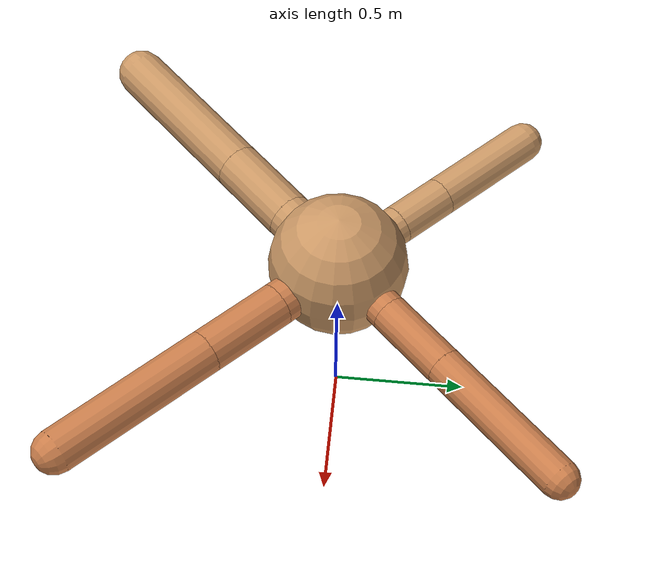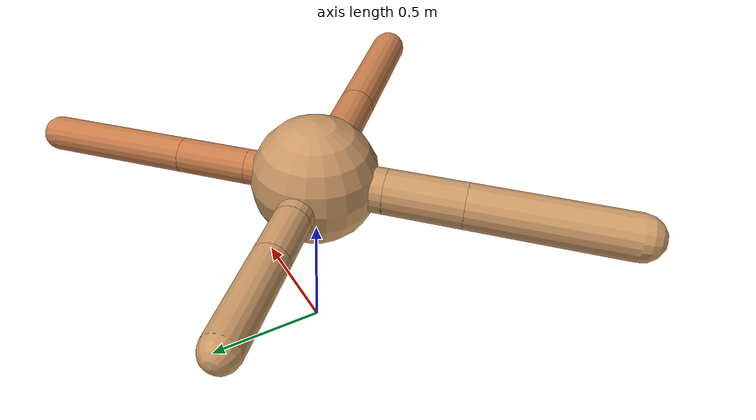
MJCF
<?xml version="1.0" ?>
<mujoco model="ant">

	<compiler angle="degree" coordinate="local" inertiafromgeom="true"/>

	<option integrator="RK4" timestep="0.01"/>

	<custom>

		<numeric data="0.0 0.0 0.55 1.0 0.0 0.0 0.0 0.0 1.0 0.0 -1.0 0.0 -1.0 0.0 1.0" name="init_qpos"/>

	</custom>

	<default>

		<joint armature="1" damping="1" limited="true"/>

		<geom conaffinity="0" condim="3" density="5.0" friction="1.5 0.1 0.1" margin="0.01" rgba="0.8 0.6 0.4 1"/>

	</default>

	<worldbody>

		<body name="torso" pos="0 0 0.75">

			<geom name="torso_geom" pos="0 0 0" size="0.2559324281386299" type="sphere"/>

			<!--joint armature="0" damping="0" limited="false" margin="0.01" name="root" pos="0 0 0" type="free"/-->

			<body name="front_left_leg" pos="0 0 0">

				<geom fromto="0 0 0 0.2 0.2 0" name="aux_1_geom" size="0.07147696116475659" type="capsule" rgba=".8 .5 .3 1"/>

				<body name="aux_1" pos="0.2 0.2 0">

					<joint axis="0 0 1" name="hip_1" pos="0.0 0.0 0.0" range="-40 40" type="hinge"/>

					<geom fromto="0 0 0 0.20388147717025962 0.20388147717025962 0" name="left_leg_geom" size="0.07147696116475659" type="capsule" rgba=".8 .5 .3 1"/>

					<body pos="0.20388147717025962 0.20388147717025962 0" name="front_left_foot">

						<joint axis="-1 1 0" name="ankle_1" pos="0.0 0.0 0.0" range="30 100" type="hinge"/>

						<geom fromto="0 0 0 0.40776295434051923 0.40776295434051923 0" name="left_ankle_geom" size="0.07147696116475659" type="capsule" rgba=".8 .5 .3 1"/>

					</body>

				</body>

			</body>

			<body name="front_right_leg" pos="0 0 0">

				<geom fromto="0 0 0 -0.2 0.2 0" name="aux_2_geom" size="0.07373377097918576" type="capsule"/>

				<body name="aux_2" pos="-0.2 0.2 0">

					<joint axis="0 0 1" name="hip_2" pos="0.0 0.0 0.0" range="-40 40" type="hinge"/>

					<geom fromto="0 0 0 -0.14879853216943514 0.14879853216943514 0" name="right_leg_geom" size="0.07373377097918576" type="capsule"/>

					<body pos="-0.14879853216943514 0.14879853216943514 0" name="front_right_foot">

						<joint axis="1 1 0" name="ankle_2" pos="0.0 0.0 0.0" range="-100 -30" type="hinge"/>

						<geom fromto="0 0 0 -0.2975970643388703 0.2975970643388703 0" name="right_ankle_geom" size="0.07373377097918576" type="capsule"/>

					</body>

				</body>

			</body>

			<body name="left_back_leg" pos="0 0 0">

				<geom fromto="0 0 0 -0.2 -0.2 0" name="aux_3_geom" size="0.09075829255998212" type="capsule"/>

				<body name="aux_3" pos="-0.2 -0.2 0">

					<joint axis="0 0 1" name="hip_3" pos="0.0 0.0 0.0" range="-40 40" type="hinge"/>

					<geom fromto="0 0 0 -0.2178808584419731 -0.2178808584419731 0" name="back_leg_geom" size="0.09075829255998212" type="capsule"/>

					<body pos="-0.2178808584419731 -0.2178808584419731 0" name="left_back_foot">

						<joint axis="-1 1 0" name="ankle_3" pos="0.0 0.0 0.0" range="-100 -30" type="hinge"/>

						<geom fromto="0 0 0 -0.4357617168839462 -0.4357617168839462 0" name="third_ankle_geom" size="0.09075829255998212" type="capsule"/>

					</body>

				</body>

			</body>

			<body name="right_back_leg" pos="0 0 0">

				<geom fromto="0 0 0 0.2 -0.2 0" name="aux_4_geom" size="0.08040065295525166" type="capsule" rgba=".8 .5 .3 1"/>

				<body name="aux_4" pos="0.2 -0.2 0">

					<joint axis="0 0 1" name="hip_4" pos="0.0 0.0 0.0" range="-40 40" type="hinge"/>

					<geom fromto="0 0 0 0.22561329987191195 -0.22561329987191195 0" name="rightback_leg_geom" size="0.08040065295525166" type="capsule" rgba=".8 .5 .3 1"/>

					<body pos="0.22561329987191195 -0.22561329987191195 0" name="right_back_foot">

						<joint axis="1 1 0" name="ankle_4" pos="0.0 0.0 0.0" range="30 100" type="hinge"/>

						<geom fromto="0 0 0 0.4512265997438239 -0.4512265997438239 0" name="fourth_ankle_geom" size="0.08040065295525166" type="capsule" rgba=".8 .5 .3 1"/>

					</body>

				</body>

			</body>

		</body>

	</worldbody>

	<actuator>

		<motor ctrllimited="true" ctrlrange="-1.0 1.0" joint="hip_4" gear="150"/>

		<motor ctrllimited="true" ctrlrange="-1.0 1.0" joint="ankle_4" gear="150"/>

		<motor ctrllimited="true" ctrlrange="-1.0 1.0" joint="hip_1" gear="150"/>

		<motor ctrllimited="true" ctrlrange="-1.0 1.0" joint="ankle_1" gear="150"/>

		<motor ctrllimited="true" ctrlrange="-1.0 1.0" joint="hip_2" gear="150"/>

		<motor ctrllimited="true" ctrlrange="-1.0 1.0" joint="ankle_2" gear="150"/>

		<motor ctrllimited="true" ctrlrange="-1.0 1.0" joint="hip_3" gear="150"/>

		<motor ctrllimited="true" ctrlrange="-1.0 1.0" joint="ankle_3" gear="150"/>

	</actuator>

</mujoco>
